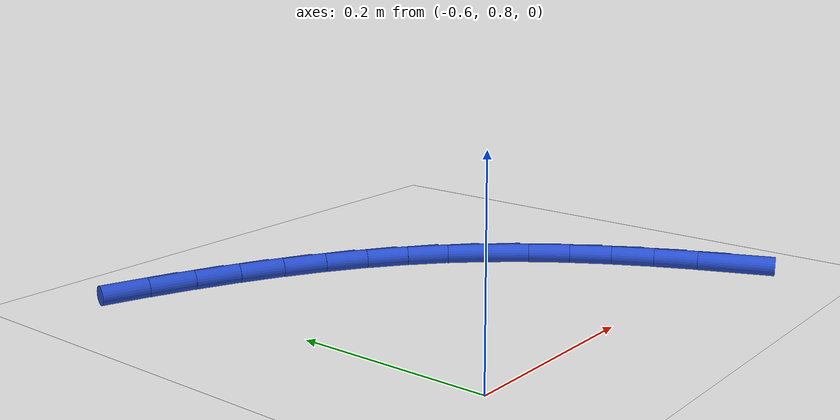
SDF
<sdf version="1.6">
 <world name="default">
  <model name="ground_plane">
   <static>1</static>
   <link name="link">
    <collision name="collision">
     <geometry><plane><normal>0 0 1</normal><size>100 100</size></plane></geometry>
     <surface><friction><ode><mu>100</mu><mu2>50</mu2></ode></friction></surface>
    </collision>
    <visual name="visual">
     <cast_shadows>0</cast_shadows>
     <geometry><plane><normal>0 0 1</normal><size>100 100</size></plane></geometry>
     <material>
      <script><uri>file://media/materials/scripts/gazebo.material</uri><name>Gazebo/WhiteGlow</name></script>
     </material>
    </visual>
   </link>
  </model>
  <model name="line">
   <link name="link_17">
    <pose>-0.1753646146229778 0.7800582491428383 0.01 0 1.57 -1.1890339592401604</pose>
    <collision name="collision">
     <geometry><cylinder><radius>0.01</radius><length>0.08</length></cylinder></geometry>
    </collision>
    <visual name="visual">
     <material>
      <script><name>Gazebo/Blue</name><uri>file://media/materials/scripts/gazebo.material</uri></script>
     </material>
     <geometry><cylinder><radius>0.01</radius><length>0.08</length></cylinder></geometry>
    </visual>
   </link>
   <link name="link_18">
    <pose>-0.19267323111472606 0.8231726725733136 0.01 0 1.57 -1.143760611868172</pose>
    <collision name="collision">
     <geometry><cylinder><radius>0.01</radius><length>0.08</length></cylinder></geometry>
    </collision>
    <visual name="visual">
     <material>
      <script><name>Gazebo/Blue</name><uri>file://media/materials/scripts/gazebo.material</uri></script>
     </material>
     <geometry><cylinder><radius>0.01</radius><length>0.08</length></cylinder></geometry>
    </visual>
   </link>
   <link name="link_19">
    <pose>-0.21169491901574583 0.8649750786477887 0.01 0 1.57 -1.0919520369672038</pose>
    <collision name="collision">
     <geometry><cylinder><radius>0.01</radius><length>0.08</length></cylinder></geometry>
    </collision>
    <visual name="visual">
     <material>
      <script><name>Gazebo/Blue</name><uri>file://media/materials/scripts/gazebo.material</uri></script>
     </material>
     <geometry><cylinder><radius>0.01</radius><length>0.08</length></cylinder></geometry>
    </visual>
   </link>
   <link name="link_20">
    <pose>-0.23262114564661762 0.905284272028601 0.01 0 1.57 -1.0334014922247443</pose>
    <collision name="collision">
     <geometry><cylinder><radius>0.01</radius><length>0.08</length></cylinder></geometry>
    </collision>
    <visual name="visual">
     <material>
      <script><name>Gazebo/Blue</name><uri>file://media/materials/scripts/gazebo.material</uri></script>
     </material>
     <geometry><cylinder><radius>0.01</radius><length>0.08</length></cylinder></geometry>
    </visual>
   </link>
   <link name="link_21">
    <pose>-0.2556433783279218 0.9439190573780865 0.01 0 1.57 -0.9680656692108975</pose>
    <collision name="collision">
     <geometry><cylinder><radius>0.01</radius><length>0.08</length></cylinder></geometry>
    </collision>
    <visual name="visual">
     <material>
      <script><name>Gazebo/Blue</name><uri>file://media/materials/scripts/gazebo.material</uri></script>
     </material>
     <geometry><cylinder><radius>0.01</radius><length>0.08</length></cylinder></geometry>
    </visual>
   </link>
   <link name="link_22">
    <pose>-0.2809530843802387 0.9806982393585824 0.01 0 1.57 -0.8961477063270991</pose>
    <collision name="collision">
     <geometry><cylinder><radius>0.01</radius><length>0.08</length></cylinder></geometry>
    </collision>
    <visual name="visual">
     <material>
      <script><name>Gazebo/Blue</name><uri>file://media/materials/scripts/gazebo.material</uri></script>
     </material>
     <geometry><cylinder><radius>0.01</radius><length>0.08</length></cylinder></geometry>
    </visual>
   </link>
   <link name="link_23">
    <pose>-0.3087417311241488 1.0154406226324248 0.01 0 1.57 -0.8181781217192209</pose>
    <collision name="collision">
     <geometry><cylinder><radius>0.01</radius><length>0.08</length></cylinder></geometry>
    </collision>
    <visual name="visual">
     <material>
      <script><name>Gazebo/Blue</name><uri>file://media/materials/scripts/gazebo.material</uri></script>
     </material>
     <geometry><cylinder><radius>0.01</radius><length>0.08</length></cylinder></geometry>
    </visual>
   </link>
   <link name="link_24">
    <pose>-0.3392007858802324 1.0479650118619506 0.01 0 1.57 -0.735405458996308</pose>
    <collision name="collision">
     <geometry><cylinder><radius>0.01</radius><length>0.08</length></cylinder></geometry>
    </collision>
    <visual name="visual">
     <material>
      <script><name>Gazebo/Blue</name><uri>file://media/materials/scripts/gazebo.material</uri></script>
     </material>
     <geometry><cylinder><radius>0.01</radius><length>0.08</length></cylinder></geometry>
    </visual>
   </link>
   <link name="link_25">
    <pose>-0.37250794785718017 1.0780979850864663 0.01 0 1.57 -0.6552173305871156</pose>
    <collision name="collision">
     <geometry><cylinder><radius>0.01</radius><length>0.08</length></cylinder></geometry>
    </collision>
    <visual name="visual">
     <material>
      <script><name>Gazebo/Blue</name><uri>file://media/materials/scripts/gazebo.material</uri></script>
     </material>
     <geometry><cylinder><radius>0.01</radius><length>0.08</length></cylinder></geometry>
    </visual>
   </link>
   <link name="link_26">
    <pose>-0.4085763739388094 1.1058154790396242 0.01 0 1.57 -0.5833674977482303</pose>
    <collision name="collision">
     <geometry><cylinder><radius>0.01</radius><length>0.08</length></cylinder></geometry>
    </collision>
    <visual name="visual">
     <material>
      <script><name>Gazebo/Blue</name><uri>file://media/materials/scripts/gazebo.material</uri></script>
     </material>
     <geometry><cylinder><radius>0.01</radius><length>0.08</length></cylinder></geometry>
    </visual>
   </link>
   <link name="link_27">
    <pose>-0.4470807555240978 1.1312280663530563 0.01 0 1.57 -0.5195054837755422</pose>
    <collision name="collision">
     <geometry><cylinder><radius>0.01</radius><length>0.08</length></cylinder></geometry>
    </collision>
    <visual name="visual">
     <material>
      <script><name>Gazebo/Blue</name><uri>file://media/materials/scripts/gazebo.material</uri></script>
     </material>
     <geometry><cylinder><radius>0.01</radius><length>0.08</length></cylinder></geometry>
    </visual>
   </link>
   <link name="link_28">
    <pose>-0.4876872488817966 1.1544511385315457 0.01 0 1.57 -0.4629217789890496</pose>
    <collision name="collision">
     <geometry><cylinder><radius>0.01</radius><length>0.08</length></cylinder></geometry>
    </collision>
    <visual name="visual">
     <material>
      <script><name>Gazebo/Blue</name><uri>file://media/materials/scripts/gazebo.material</uri></script>
     </material>
     <geometry><cylinder><radius>0.01</radius><length>0.08</length></cylinder></geometry>
    </visual>
   </link>
   <link name="link_29">
    <pose>-0.5300620102806565 1.1756000870798755 0.01 0 1.57 -0.41286437736375453</pose>
    <collision name="collision">
     <geometry><cylinder><radius>0.01</radius><length>0.08</length></cylinder></geometry>
    </collision>
    <visual name="visual">
     <material>
      <script><name>Gazebo/Blue</name><uri>file://media/materials/scripts/gazebo.material</uri></script>
     </material>
     <geometry><cylinder><radius>0.01</radius><length>0.08</length></cylinder></geometry>
    </visual>
   </link>
   <link name="link_30">
    <pose>-0.5738711959894282 1.1947903035028289 0.01 0 1.57 -0.36860629536668515</pose>
    <collision name="collision">
     <geometry><cylinder><radius>0.01</radius><length>0.08</length></cylinder></geometry>
    </collision>
    <visual name="visual">
     <material>
      <script><name>Gazebo/Blue</name><uri>file://media/materials/scripts/gazebo.material</uri></script>
     </material>
     <geometry><cylinder><radius>0.01</radius><length>0.08</length></cylinder></geometry>
    </visual>
   </link>
   <link name="link_31">
    <pose>-0.6187809622768625 1.2121371793051892 0.01 0 1.57 -0.3294823951898498</pose>
    <collision name="collision">
     <geometry><cylinder><radius>0.01</radius><length>0.08</length></cylinder></geometry>
    </collision>
    <visual name="visual">
     <material>
      <script><name>Gazebo/Blue</name><uri>file://media/materials/scripts/gazebo.material</uri></script>
     </material>
     <geometry><cylinder><radius>0.01</radius><length>0.08</length></cylinder></geometry>
    </visual>
   </link>
  </model>
 </world>
</sdf>
